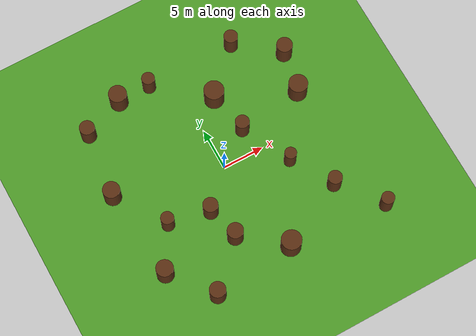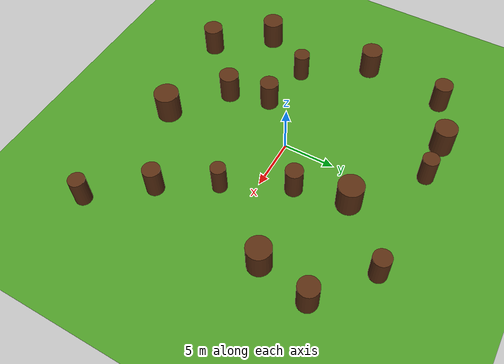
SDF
<?xml version="1.0" ?>
<sdf version="1.8">
    <world name="map">
        <physics name="1ms" type="ignored">
            <max_step_size>0.001</max_step_size>
            <real_time_factor>1.0</real_time_factor>
        </physics>

        <plugin filename="libgz-sim-physics-system.so" name="gz::sim::systems::Physics">
        </plugin>
        <plugin filename="libgz-sim-user-commands-system.so" name="gz::sim::systems::UserCommands">
        </plugin>
        <plugin filename="libgz-sim-scene-broadcaster-system.so" name="gz::sim::systems::SceneBroadcaster">
        </plugin>
        <plugin filename="libgz-sim-navsat-system" name="gz::sim::systems::NavSat">
        </plugin>
        <plugin filename="libgz-sim-imu-system.so" name="gz::sim::systems::Imu">
        </plugin>
        <plugin filename="libgz-sim-sensors-system.so" name="gz::sim::systems::Sensors">
            <render_engine>ogre2</render_engine>
        </plugin>

        <spherical_coordinates>
            <surface_model>EARTH_WGS84</surface_model>
            <world_frame_orientation>ENU</world_frame_orientation>
            <latitude_deg>-22.9</latitude_deg>
            <longitude_deg>-43.2</longitude_deg>
            <elevation>0</elevation>
            <heading_deg>0</heading_deg>
        </spherical_coordinates>

        <!-- Sun light with shadows -->
        <light type="directional" name="sun">
            <cast_shadows>true</cast_shadows>
            <pose>0 0 10 0 0 0</pose>
            <diffuse>0.8 0.8 0.8 1</diffuse>
            <specular>0.2 0.2 0.2 1</specular>
            <direction>-0.5 0.1 -0.9</direction>
        </light>

        <!-- Large open grass field (100x100m) -->
        <model name="ground_plane">
            <static>true</static>
            <pose>0 0 0 0 0 0</pose>
            <link name="link">
                <visual name="visual">
                    <geometry>
                        <plane>
                            <normal>0 0 1</normal>
                            <size>30 30</size>
                        </plane>
                    </geometry>
                    <material>
                        <ambient>0.25 0.5 0.1 1</ambient>
                        <diffuse>0.3 0.6 0.15 1</diffuse>
                        <specular>0.02 0.02 0.02 1</specular>
                    </material>
                </visual>
                <collision name="collision">
                    <geometry>
                        <plane>
                            <normal>0 0 1</normal>
                            <size>30 30</size>
                        </plane>
                    </geometry>
                </collision>
            </link>
        </model>

        <!-- OpenMower Docking Station (temporarily disabled) -->

        <!-- Tree trunks — positions and radii match obstacle_map_publisher.py and synthetic_scan.py -->
        <model name="tree_1"><static>true</static><pose>-12.0 11.0 1.5 0 0 0</pose><link name="link">
            <visual name="visual"><geometry><cylinder><radius>0.90</radius><length>3.0</length></cylinder></geometry>
            <material><ambient>0.35 0.18 0.07 1</ambient><diffuse>0.35 0.18 0.07 1</diffuse></material></visual>
            <collision name="collision"><geometry><cylinder><radius>0.90</radius><length>3.0</length></cylinder></geometry></collision>
        </link></model>

        <model name="tree_2"><static>true</static><pose>-7.0 13.0 1.5 0 0 0</pose><link name="link">
            <visual name="visual"><geometry><cylinder><radius>1.08</radius><length>3.0</length></cylinder></geometry>
            <material><ambient>0.35 0.18 0.07 1</ambient><diffuse>0.35 0.18 0.07 1</diffuse></material></visual>
            <collision name="collision"><geometry><cylinder><radius>1.08</radius><length>3.0</length></cylinder></geometry></collision>
        </link></model>

        <model name="tree_3"><static>true</static><pose>-3.0 13.0 1.5 0 0 0</pose><link name="link">
            <visual name="visual"><geometry><cylinder><radius>0.78</radius><length>3.0</length></cylinder></geometry>
            <material><ambient>0.35 0.18 0.07 1</ambient><diffuse>0.35 0.18 0.07 1</diffuse></material></visual>
            <collision name="collision"><geometry><cylinder><radius>0.78</radius><length>3.0</length></cylinder></geometry></collision>
        </link></model>

        <model name="tree_4"><static>true</static><pose>3.0 8.0 1.5 0 0 0</pose><link name="link">
            <visual name="visual"><geometry><cylinder><radius>1.20</radius><length>3.0</length></cylinder></geometry>
            <material><ambient>0.35 0.18 0.07 1</ambient><diffuse>0.35 0.18 0.07 1</diffuse></material></visual>
            <collision name="collision"><geometry><cylinder><radius>1.20</radius><length>3.0</length></cylinder></geometry></collision>
        </link></model>

        <model name="tree_5"><static>true</static><pose>8.0 13.0 1.5 0 0 0</pose><link name="link">
            <visual name="visual"><geometry><cylinder><radius>0.84</radius><length>3.0</length></cylinder></geometry>
            <material><ambient>0.35 0.18 0.07 1</ambient><diffuse>0.35 0.18 0.07 1</diffuse></material></visual>
            <collision name="collision"><geometry><cylinder><radius>0.84</radius><length>3.0</length></cylinder></geometry></collision>
        </link></model>

        <model name="tree_6"><static>true</static><pose>13.0 9.0 1.5 0 0 0</pose><link name="link">
            <visual name="visual"><geometry><cylinder><radius>0.96</radius><length>3.0</length></cylinder></geometry>
            <material><ambient>0.35 0.18 0.07 1</ambient><diffuse>0.35 0.18 0.07 1</diffuse></material></visual>
            <collision name="collision"><geometry><cylinder><radius>0.96</radius><length>3.0</length></cylinder></geometry></collision>
        </link></model>

        <model name="tree_7"><static>true</static><pose>-13.0 3.0 1.5 0 0 0</pose><link name="link">
            <visual name="visual"><geometry><cylinder><radius>1.02</radius><length>3.0</length></cylinder></geometry>
            <material><ambient>0.35 0.18 0.07 1</ambient><diffuse>0.35 0.18 0.07 1</diffuse></material></visual>
            <collision name="collision"><geometry><cylinder><radius>1.02</radius><length>3.0</length></cylinder></geometry></collision>
        </link></model>

        <model name="tree_8"><static>true</static><pose>-9.0 -3.0 1.5 0 0 0</pose><link name="link">
            <visual name="visual"><geometry><cylinder><radius>0.78</radius><length>3.0</length></cylinder></geometry>
            <material><ambient>0.35 0.18 0.07 1</ambient><diffuse>0.35 0.18 0.07 1</diffuse></material></visual>
            <collision name="collision"><geometry><cylinder><radius>0.78</radius><length>3.0</length></cylinder></geometry></collision>
        </link></model>

        <model name="tree_9"><static>true</static><pose>-4.0 -4.0 1.5 0 0 0</pose><link name="link">
            <visual name="visual"><geometry><cylinder><radius>0.90</radius><length>3.0</length></cylinder></geometry>
            <material><ambient>0.35 0.18 0.07 1</ambient><diffuse>0.35 0.18 0.07 1</diffuse></material></visual>
            <collision name="collision"><geometry><cylinder><radius>0.90</radius><length>3.0</length></cylinder></geometry></collision>
        </link></model>

        <model name="tree_10"><static>true</static><pose>12.0 4.0 1.5 0 0 0</pose><link name="link">
            <visual name="visual"><geometry><cylinder><radius>1.14</radius><length>3.0</length></cylinder></geometry>
            <material><ambient>0.35 0.18 0.07 1</ambient><diffuse>0.35 0.18 0.07 1</diffuse></material></visual>
            <collision name="collision"><geometry><cylinder><radius>1.14</radius><length>3.0</length></cylinder></geometry></collision>
        </link></model>

        <model name="tree_11"><static>true</static><pose>7.0 -3.0 1.5 0 0 0</pose><link name="link">
            <visual name="visual"><geometry><cylinder><radius>0.72</radius><length>3.0</length></cylinder></geometry>
            <material><ambient>0.35 0.18 0.07 1</ambient><diffuse>0.35 0.18 0.07 1</diffuse></material></visual>
            <collision name="collision"><geometry><cylinder><radius>0.72</radius><length>3.0</length></cylinder></geometry></collision>
        </link></model>

        <model name="tree_12"><static>true</static><pose>-12.0 -8.0 1.5 0 0 0</pose><link name="link">
            <visual name="visual"><geometry><cylinder><radius>1.02</radius><length>3.0</length></cylinder></geometry>
            <material><ambient>0.35 0.18 0.07 1</ambient><diffuse>0.35 0.18 0.07 1</diffuse></material></visual>
            <collision name="collision"><geometry><cylinder><radius>1.02</radius><length>3.0</length></cylinder></geometry></collision>
        </link></model>

        <model name="tree_13"><static>true</static><pose>-8.0 -13.0 1.5 0 0 0</pose><link name="link">
            <visual name="visual"><geometry><cylinder><radius>0.96</radius><length>3.0</length></cylinder></geometry>
            <material><ambient>0.35 0.18 0.07 1</ambient><diffuse>0.35 0.18 0.07 1</diffuse></material></visual>
            <collision name="collision"><geometry><cylinder><radius>0.96</radius><length>3.0</length></cylinder></geometry></collision>
        </link></model>

        <model name="tree_14"><static>true</static><pose>2.0 -12.0 1.5 0 0 0</pose><link name="link">
            <visual name="visual"><geometry><cylinder><radius>1.20</radius><length>3.0</length></cylinder></geometry>
            <material><ambient>0.35 0.18 0.07 1</ambient><diffuse>0.35 0.18 0.07 1</diffuse></material></visual>
            <collision name="collision"><geometry><cylinder><radius>1.20</radius><length>3.0</length></cylinder></geometry></collision>
        </link></model>

        <model name="tree_15"><static>true</static><pose>10.0 -8.0 1.5 0 0 0</pose><link name="link">
            <visual name="visual"><geometry><cylinder><radius>0.84</radius><length>3.0</length></cylinder></geometry>
            <material><ambient>0.35 0.18 0.07 1</ambient><diffuse>0.35 0.18 0.07 1</diffuse></material></visual>
            <collision name="collision"><geometry><cylinder><radius>0.84</radius><length>3.0</length></cylinder></geometry></collision>
        </link></model>

        <model name="tree_16"><static>true</static><pose>14.0 -13.0 1.5 0 0 0</pose><link name="link">
            <visual name="visual"><geometry><cylinder><radius>0.78</radius><length>3.0</length></cylinder></geometry>
            <material><ambient>0.35 0.18 0.07 1</ambient><diffuse>0.35 0.18 0.07 1</diffuse></material></visual>
            <collision name="collision"><geometry><cylinder><radius>0.78</radius><length>3.0</length></cylinder></geometry></collision>
        </link></model>

        <model name="tree_17"><static>true</static><pose>4.0 3.0 1.5 0 0 0</pose><link name="link">
            <visual name="visual"><geometry><cylinder><radius>0.84</radius><length>3.0</length></cylinder></geometry>
            <material><ambient>0.35 0.18 0.07 1</ambient><diffuse>0.35 0.18 0.07 1</diffuse></material></visual>
            <collision name="collision"><geometry><cylinder><radius>0.84</radius><length>3.0</length></cylinder></geometry></collision>
        </link></model>

        <model name="tree_18"><static>true</static><pose>-3.0 -8.0 1.5 0 0 0</pose><link name="link">
            <visual name="visual"><geometry><cylinder><radius>0.96</radius><length>3.0</length></cylinder></geometry>
            <material><ambient>0.35 0.18 0.07 1</ambient><diffuse>0.35 0.18 0.07 1</diffuse></material></visual>
            <collision name="collision"><geometry><cylinder><radius>0.96</radius><length>3.0</length></cylinder></geometry></collision>
        </link></model>

    </world>
</sdf>
